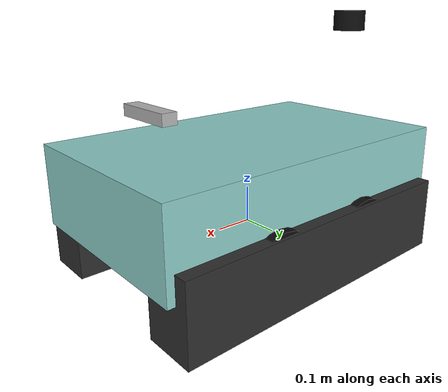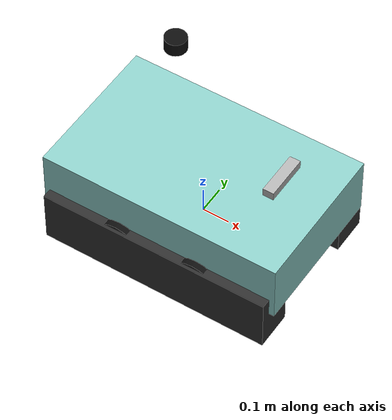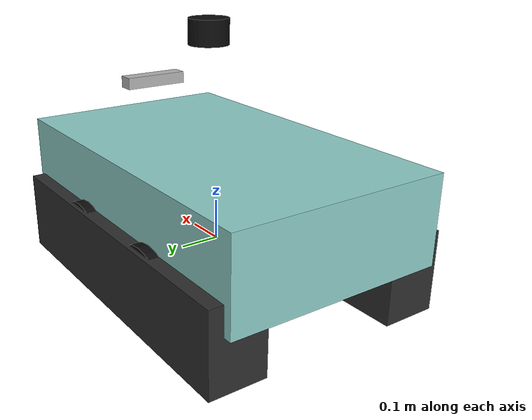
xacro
<?xml version="1.0"?>
<robot xmlns:xacro="http://www.ros.org/wiki/xacro" name="tracked_robot">

  <!-- enable_camera: подключать ли тяжёлую RGB-D камеру (нужна только для
       odom_source:=visual). Пробрасывается из launch: xacro ... enable_camera:=true -->
  <xacro:arg name="enable_camera" default="false"/>

  <xacro:property name="PI" value="3.14159265359"/>

  <!-- ===== Габариты корпуса ===== -->
  <xacro:property name="base_length" value="0.90"/>
  <xacro:property name="base_width"  value="0.55"/>
  <xacro:property name="base_height" value="0.22"/>
  <xacro:property name="base_mass"   value="30.0"/>
  <xacro:property name="body_clearance" value="0.14"/>

  <!-- ===== Гусеницы (визуальные кожухи) ===== -->
  <xacro:property name="track_length" value="0.86"/>
  <xacro:property name="track_width"  value="0.14"/>
  <xacro:property name="track_height" value="0.20"/>

  <!-- ===== Ведущие колёса (скрытые, skid-steer) ===== -->
  <xacro:property name="wheel_radius" value="0.11"/>
  <xacro:property name="wheel_width"  value="0.12"/>
  <xacro:property name="wheel_mass"   value="5.0"/>
  <xacro:property name="wheel_separation" value="0.48"/> <!-- как в kolesa_control -->
  <xacro:property name="wheel_base"   value="0.30"/>

  <!-- ===== Координаты датчиков (СОВПАДАЮТ с реальным URDF) ===== -->
  <xacro:property name="imu_xyz"   value="0.135 -0.275 0.4"/>
  <xacro:property name="gps_xyz"   value="0.10  -0.100 0.42"/>
  <xacro:property name="laser_xyz" value="-0.21  0.16  0.55"/>
  <xacro:property name="cam_xyz"   value="0.30  0.0   0.35"/>
  <xacro:property name="cam_rgb_yoff" value="-0.025"/>

  <!-- ===================== Инерции ===================== -->
  <xacro:macro name="box_inertia" params="m x y z">
    <inertial>
      <mass value="${m}"/>
      <inertia ixx="${m*(y*y+z*z)/12.0}" ixy="0.0" ixz="0.0"
               iyy="${m*(x*x+z*z)/12.0}" iyz="0.0"
               izz="${m*(x*x+y*y)/12.0}"/>
    </inertial>
  </xacro:macro>

  <xacro:macro name="cyl_inertia" params="m r h">
    <inertial>
      <mass value="${m}"/>
      <inertia ixx="${m*(3*r*r+h*h)/12.0}" ixy="0.0" ixz="0.0"
               iyy="${m*(3*r*r+h*h)/12.0}" iyz="0.0"
               izz="${m*r*r/2.0}"/>
    </inertial>
  </xacro:macro>

  <xacro:macro name="drive_wheel" params="name reflect lon">
    <link name="${name}_wheel">
      <visual>
        <origin xyz="0 0 0" rpy="${PI/2} 0 0"/>
        <geometry><cylinder radius="${wheel_radius}" length="${wheel_width}"/></geometry>
        <material name="black"/>
      </visual>
      <collision>
        <origin xyz="0 0 0" rpy="${PI/2} 0 0"/>
        <geometry><cylinder radius="${wheel_radius}" length="${wheel_width}"/></geometry>
      </collision>
      <xacro:cyl_inertia m="${wheel_mass}" r="${wheel_radius}" h="${wheel_width}"/>
    </link>
    <joint name="${name}_wheel_joint" type="continuous">
      <parent link="base_link"/>
      <child link="${name}_wheel"/>
      <origin xyz="${lon} ${reflect*wheel_separation/2.0} 0" rpy="0 0 0"/>
      <axis xyz="0 1 0"/>
      <dynamics damping="0.05" friction="0.05"/>
    </joint>
  </xacro:macro>

  <xacro:macro name="track_visual" params="name reflect">
    <link name="${name}_track">
      <visual>
        <geometry><box size="${track_length} ${track_width} ${track_height}"/></geometry>
        <material name="dark_grey"/>
      </visual>
      <inertial>
        <mass value="1.0"/>
        <inertia ixx="0.01" ixy="0" ixz="0" iyy="0.01" iyz="0" izz="0.01"/>
      </inertial>
    </link>
    <joint name="${name}_track_joint" type="fixed">
      <parent link="base_link"/>
      <child link="${name}_track"/>
      <origin xyz="0 ${reflect*wheel_separation/2.0} 0" rpy="0 0 0"/>
    </joint>
  </xacro:macro>

  <!-- ===================== Материалы ===================== -->
  <material name="teal">      <color rgba="0.55 0.80 0.78 1.0"/></material>
  <material name="dark_grey"> <color rgba="0.18 0.18 0.18 1.0"/></material>
  <material name="light_grey"><color rgba="0.7 0.7 0.7 1.0"/></material>
  <material name="black">     <color rgba="0.05 0.05 0.05 1.0"/></material>

  <!-- ===================== base_link (корень TF, как в реальном URDF) ===== -->
  <link name="base_link">
    <visual>
      <origin xyz="0 0 ${body_clearance - wheel_radius + base_height/2.0}" rpy="0 0 0"/>
      <geometry><box size="${base_length} ${base_width} ${base_height}"/></geometry>
      <material name="teal"/>
    </visual>
    <collision>
      <origin xyz="0 0 ${body_clearance - wheel_radius + base_height/2.0}" rpy="0 0 0"/>
      <geometry><box size="${base_length} ${base_width} ${base_height}"/></geometry>
    </collision>
    <xacro:box_inertia m="${base_mass}" x="${base_length}" y="${base_width}" z="${base_height}"/>
  </link>

  <!-- ===================== Гусеницы и колёса ===================== -->
  <xacro:track_visual name="left"  reflect="1"/>
  <xacro:track_visual name="right" reflect="-1"/>
  <xacro:drive_wheel name="front_left"  reflect="1"  lon="${ wheel_base/2.0}"/>
  <xacro:drive_wheel name="rear_left"   reflect="1"  lon="${-wheel_base/2.0}"/>
  <xacro:drive_wheel name="front_right" reflect="-1" lon="${ wheel_base/2.0}"/>
  <xacro:drive_wheel name="rear_right"  reflect="-1" lon="${-wheel_base/2.0}"/>

  <!-- ===================== IMU-фрейм (нужен для TF-совместимости) ===== -->
  <link name="imu_link"/>
  <joint name="base_to_imu" type="fixed">
    <parent link="base_link"/><child link="imu_link"/>
    <origin xyz="${imu_xyz}" rpy="0 0 0"/>
  </joint>

  <!-- ===================== GPS-антенна ===================== -->
  <link name="gps_link"/>
  <joint name="base_to_gps" type="fixed">
    <parent link="base_link"/><child link="gps_link"/>
    <origin xyz="${gps_xyz}" rpy="0 0 0"/>
  </joint>

  <!-- ===================== Лидар ===================== -->
  <link name="laser_frame">
    <visual>
      <geometry><cylinder radius="0.04" length="0.05"/></geometry>
      <material name="black"/>
    </visual>
    <collision><geometry><cylinder radius="0.04" length="0.05"/></geometry></collision>
    <inertial>
      <mass value="0.2"/>
      <inertia ixx="1e-4" ixy="0" ixz="0" iyy="1e-4" iyz="0" izz="1e-4"/>
    </inertial>
  </link>
  <joint name="base_to_laser" type="fixed">
    <parent link="base_link"/><child link="laser_frame"/>
    <origin xyz="${laser_xyz}" rpy="0 0 0"/>
  </joint>

  <!-- ===================== Камера Astra ===================== -->
  <link name="camera_link">
    <visual>
      <geometry><box size="0.04 0.165 0.03"/></geometry>
      <material name="light_grey"/>
    </visual>
    <collision><geometry><box size="0.04 0.165 0.03"/></geometry></collision>
    <inertial>
      <mass value="0.3"/>
      <inertia ixx="1e-4" ixy="0" ixz="0" iyy="1e-4" iyz="0" izz="1e-4"/>
    </inertial>
  </link>
  <joint name="base_to_camera" type="fixed">
    <parent link="base_link"/><child link="camera_link"/>
    <origin xyz="${cam_xyz}" rpy="0 0 0"/>
  </joint>

  <link name="camera_depth_frame"/>
  <joint name="camera_depth_joint" type="fixed">
    <parent link="camera_link"/><child link="camera_depth_frame"/>
    <origin xyz="0 0 0" rpy="0 0 0"/>
  </joint>
  <link name="camera_depth_optical_frame"/>
  <joint name="camera_depth_optical_joint" type="fixed">
    <parent link="camera_depth_frame"/><child link="camera_depth_optical_frame"/>
    <origin xyz="0 0 0" rpy="${-PI/2} 0 ${-PI/2}"/>
  </joint>

  <link name="camera_rgb_frame"/>
  <joint name="camera_rgb_joint" type="fixed">
    <parent link="camera_link"/><child link="camera_rgb_frame"/>
    <origin xyz="0 ${cam_rgb_yoff} 0" rpy="0 0 0"/>
  </joint>
  <link name="camera_rgb_optical_frame"/>
  <joint name="camera_rgb_optical_joint" type="fixed">
    <parent link="camera_rgb_frame"/><child link="camera_rgb_optical_frame"/>
    <origin xyz="0 0 0" rpy="${-PI/2} 0 ${-PI/2}"/>
  </joint>

  <!-- ===================== Плагины Gazebo ===================== -->
  <xacro:include filename="$(find astra_gazebo)/urdf/tracked_robot_sim.gazebo.xacro"/>
  <xacro:sim_gazebo enable_camera="$(arg enable_camera)"/>

</robot>
